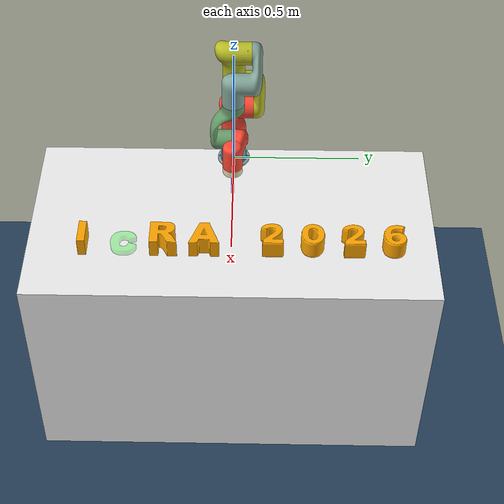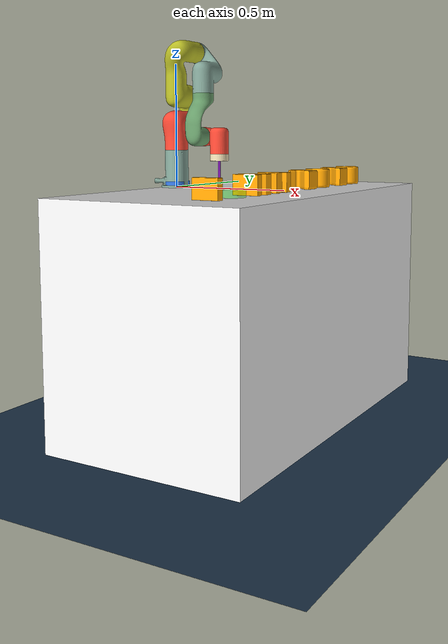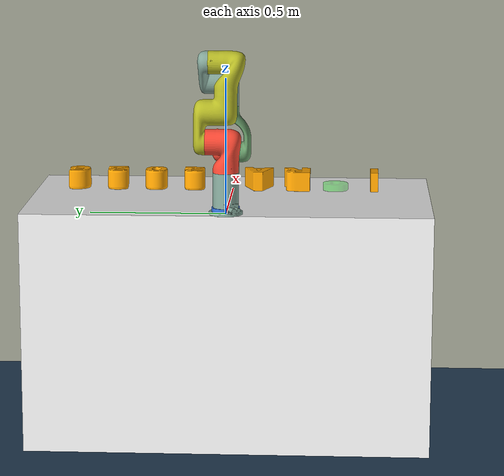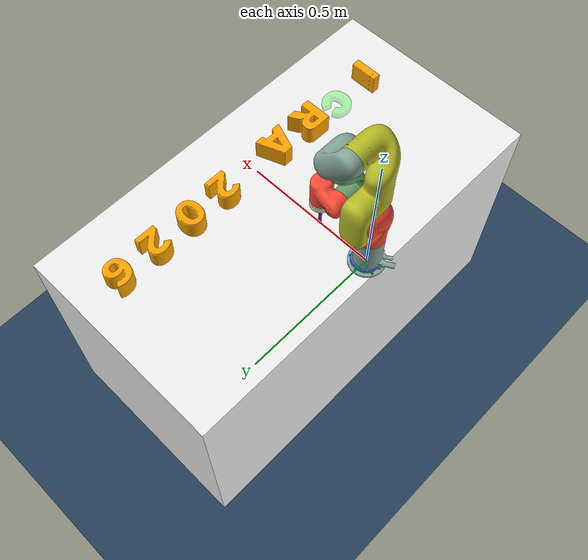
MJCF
<mujoco model="xarm6_pusht_icra_sign">
  <include file="common.xml"/>

  <asset>
    <mesh name="glyph_i" file="assets/glyph_i.obj" maxhullvert="32" scale="1 1 3"/>
    <mesh name="glyph_a" file="assets/glyph_a.obj" maxhullvert="32" scale="1 1 3"/>
    <!-- The pushed C. Visual only -- see the `block` body below. -->
    <mesh name="glyph_c" file="assets/glyph_c.obj"/>
    <mesh name="glyph_r" file="assets/glyph_r.obj" maxhullvert="32" scale="1 1 3"/>
    <mesh name="glyph_0" file="assets/glyph_0.obj" maxhullvert="32" scale="1 1 3"/>
    <mesh name="glyph_2" file="assets/glyph_2.obj" maxhullvert="32" scale="1 1 3"/>
    <mesh name="glyph_6" file="assets/glyph_6.obj" maxhullvert="32" scale="1 1 3"/>
  </asset>

  <worldbody>
    <geom name="table" type="box" size="0.40 0.7615 0.455" pos="0.35 0 -0.455"
      contype="3" conaffinity="3" rgba="0.95 0.95 0.95 1"/>

    <camera name="front" pos="2.3033 0.0400 1.0375"
      xyaxes="0.0000 1.0000 -0.0000 -0.4226 0.0000 0.9063"/>

    <body name="goal" mocap="true" pos="0.5 -0.40 0.0125" quat="0.70711 0 0 0.70711">
      <geom class="goal" name="goal_c" type="mesh" mesh="glyph_c"/>
    </body>

    <body name="local_goal" mocap="true" pos="0.0 0.0 0.0125" quat="1 0 0 0">
      <geom class="local_goal" name="local_goal_c" type="mesh"
            mesh="glyph_c"/>
    </body>

    <body name="block" pos="0.0 0.0 0.0125">
      <joint name="T_x" type="slide" axis="1 0 0" damping="0.0"/>
      <joint name="T_y" type="slide" axis="0 1 0" damping="0.0"/>
      <joint name="T_z" type="hinge" axis="0 0 1" damping="0.0"/>
      <joint name="T_zs" type="slide" axis="0 0 1" damping="0.0"/>
      <geom name="c_visual" type="mesh" mesh="glyph_c" contype="0"
            conaffinity="0" mass="0" rgba="0.2 0.45 0.85 1"/>
      <geom name="c_spine" type="box" size="0.0160 0.0515 0.0125" pos="-0.0323 0.0 0.0" mass="0.0348" rgba="0.2 0.45 0.85 0"/>
      <geom name="c_top_bar" type="box" size="0.0483 0.0160 0.0125" pos="0.0 0.0355 0.0" mass="0.0326" rgba="0.2 0.45 0.85 0"/>
      <geom name="c_bot_bar" type="box" size="0.0483 0.0160 0.0125" pos="0.0 -0.0355 0.0" mass="0.0326" rgba="0.2 0.45 0.85 0"/>
    </body>

    <geom class="tabletop_obstacle" name="letter_I" type="mesh"
      mesh="glyph_i" pos="0.5 -0.55 0.0375" euler="0 0 90"/>
    <geom class="tabletop_obstacle" name="letter_R" type="mesh"
      mesh="glyph_r" pos="0.5 -0.25 0.0375" euler="0 0 90"/>

    <!-- The A is now the source's own mesh like every other glyph; it
         used to be three boxes because `alphabets/` shipped no A. -->
    <geom class="tabletop_obstacle" name="letter_A" type="mesh"
      mesh="glyph_a" pos="0.5 -0.1 0.0375" euler="0 0 90"/>

    <geom class="tabletop_obstacle" name="digit_2" type="mesh"
      mesh="glyph_2" pos="0.5 0.15 0.0375" euler="0 0 90"/>
    <geom class="tabletop_obstacle" name="digit_0" type="mesh"
      mesh="glyph_0" pos="0.5 0.3 0.0375" euler="0 0 90"/>
    <geom class="tabletop_obstacle" name="digit_2b" type="mesh"
      mesh="glyph_2" pos="0.5 0.45 0.0375" euler="0 0 90"/>
    <geom class="tabletop_obstacle" name="digit_6" type="mesh"
      mesh="glyph_6" pos="0.5 0.6 0.0375" euler="0 0 90"/>
  </worldbody>

  <contact>
    <pair geom1="c_spine" geom2="table" condim="3" friction="0.3 0.3 0.005 0.0001 0.0001" solimp="0.999 0.9999 0.0001"/>
    <pair geom1="c_top_bar" geom2="table" condim="3" friction="0.3 0.3 0.005 0.0001 0.0001" solimp="0.999 0.9999 0.0001"/>
    <pair geom1="c_bot_bar" geom2="table" condim="3" friction="0.3 0.3 0.005 0.0001 0.0001" solimp="0.999 0.9999 0.0001"/>
  </contact>

  <sensor>
    <framepos name="position" objtype="body" objname="block" reftype="body" refname="goal"/>
    <framequat name="orientation" objtype="body" objname="block" reftype="body" refname="goal"/>
  </sensor>

  <keyframe>
    <key name="start"
      qpos="0.0 -0.785 -0.785 0.0 1.5708 0.3 0.400 0.0 0.0"/>
  </keyframe>

  <statistic center="0.40 0.04 0" extent="1.0"/>
</mujoco>

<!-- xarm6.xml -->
<mujoco model="xarm6_stick">

  <compiler angle="degree"/>

  <default>
    <default class="xarm6">
      <geom type="mesh" contype="1" conaffinity="1"
            solimp="0.99 0.99 0.01" solref="0.01 1"/>
      <joint damping="50" armature="1" frictionloss="0" limited="true"/>
      <velocity ctrllimited="true" forcelimited="true"/>
    </default>
  </default>

  <contact>
    <exclude body1="xarm6_link_base" body2="xarm6_link1"/>
    <exclude body1="xarm6_link1" body2="xarm6_link2"/>
    <exclude body1="xarm6_link2" body2="xarm6_link3"/>
    <exclude body1="xarm6_link3" body2="xarm6_link4"/>
    <exclude body1="xarm6_link4" body2="xarm6_link5"/>
    <exclude body1="xarm6_link5" body2="xarm6_link6"/>
    <exclude body1="xarm6_link6" body2="xarm6_stick"/>
  </contact>

  <asset>
    <material name="xarm6_gray" rgba="0.156863 0.156863 0.156863 1"/>
    <material name="xarm6_blue" rgba="0.513725 0.647059 0.596078 1"/>
    <material name="xarm6_red" rgba="0.984314 0.286275 0.203922 1"/>
    <material name="xarm6_yellow" rgba="0.721569 0.733333 0.14902 1"/>
    <material name="xarm6_green" rgba="0.407843 0.615686 0.415686 1"/>
    <material name="xarm6_white" rgba="0.921569 0.858824 0.698039 1"/>
    <material name="xarm6_stick" rgba="0.5 0.1 0.7 1"/>

    <mesh name="link_base_shell" file="assets/link1.obj" maxhullvert="32"/>
    <mesh name="link1" file="assets/link2.obj" maxhullvert="32"/>
    <mesh name="link2" file="assets/link3.obj" maxhullvert="32"/>
    <mesh name="link3" file="assets/link4.obj" maxhullvert="32"/>
    <mesh name="link4" file="assets/link5.obj" maxhullvert="32"/>
    <mesh name="link5" file="assets/link6.obj" maxhullvert="32"/>
    <mesh name="link6" file="assets/tool_flange.obj" maxhullvert="32"/>
  </asset>

  <worldbody>
    <body name="xarm6_link_base" childclass="xarm6">
      <geom name="xarm6_base_shell" mesh="link_base_shell" euler="0 0 180"
            material="xarm6_blue" mass="2.7"/>

      <body name="xarm6_link1" pos="0 0 0.1538" gravcomp="1">
        <joint name="xarm6_joint1" axis="0 0 1" range="-360 360"/>
        <geom name="xarm6_link1" mesh="link1" euler="0 0 180"
              material="xarm6_red" mass="2.16"/>

        <body name="xarm6_link2" pos="0.000350 0.075295 0.112000" euler="-90 0 -90" gravcomp="1">
          <joint name="xarm6_joint2" axis="0 0 1" range="-114.5916 114.5916"/>
          <geom name="xarm6_link2" mesh="link2" euler="0 0 180"
                material="xarm6_yellow" mass="1.71"/>

          <body name="xarm6_link3" pos="0.284550 0.053312 -0.008303" euler="0 0 90" gravcomp="1">
            <joint name="xarm6_joint3" axis="0 0 1" range="-223.4592 10.8859"/>
            <geom name="xarm6_link3" mesh="link3" euler="0 0 0"
                  material="xarm6_blue" mass="1.384"/>

            <body name="xarm6_link4" pos="0.077700 0.169121 -0.067495" euler="-90 0 0" gravcomp="1">
              <joint name="xarm6_joint4" axis="0 0 1" range="-360 360"
                     stiffness="175" springref="0"/>
              <geom name="xarm6_link4" mesh="link4" euler="0 0 90"
                    material="xarm6_green" mass="1.115"/>

              <body name="xarm6_link5" pos="-0.000006 0.004747 0.172996" euler="90 0 0" gravcomp="1">
                <joint name="xarm6_joint5" axis="0 0 1" range="-94.5352 180"/>
                <geom name="xarm6_link5" mesh="link5" euler="0 0 180"
                      material="xarm6_red" mass="1.275"/>

                <body name="xarm6_link6" pos="0.076010 0.068771 0.004339" euler="-90 0 0" gravcomp="1">
                  <joint name="xarm6_joint6" axis="0 0 1" range="-360 360"/>
                  <geom name="xarm6_link6" mesh="link6" euler="0 0 90"
                        material="xarm6_white" mass="0.1096"/>

                  <body name="xarm6_stick" pos="0 0 0">
                    <geom name="xarm6_stick" type="capsule" size="0.00555 0.08415"
                          pos="0 0 0.0897" material="xarm6_stick" mass="0.05"/>
                    <site name="xarm6_tip" pos="0 0 0.1794" size="0.003" rgba="1 0 0 1"/>
                  </body>
                </body>
              </body>
            </body>
          </body>
        </body>
      </body>
    </body>
  </worldbody>

  <actuator>
    <velocity class="xarm6" name="xarm6_motor1" joint="xarm6_joint1"
              ctrlrange="-0.5 0.5" forcerange="-50 50" kv="300"/>
    <velocity class="xarm6" name="xarm6_motor2" joint="xarm6_joint2"
              ctrlrange="-0.5 0.5" forcerange="-50 50" kv="300"/>
    <velocity class="xarm6" name="xarm6_motor3" joint="xarm6_joint3"
              ctrlrange="-0.5 0.5" forcerange="-32 32" kv="200"/>
    <velocity class="xarm6" name="xarm6_motor4" joint="xarm6_joint4"
              ctrlrange="-0.5 0.5" forcerange="-32 32" kv="200"/>
    <velocity class="xarm6" name="xarm6_motor5" joint="xarm6_joint5"
              ctrlrange="-0.5 0.5" forcerange="-32 32" kv="200"/>
    <velocity class="xarm6" name="xarm6_motor6" joint="xarm6_joint6"
              ctrlrange="-0.5 0.5" forcerange="-20 20" kv="200"/>
  </actuator>
</mujoco>

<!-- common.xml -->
<mujoco model="xarm6_pusht_tabletop_common">

  <option timestep="0.01" gravity="0 0 -9.81" iterations="20" ls_iterations="20" integrator="implicitfast"/>

  <include file="../xarm6/xarm6.xml"/>

  <default>
    <geom friction="0.5 0.005 0.0001" solref="0.004 1" solimp="0.9 0.95 0.001"/>
    <default class="goal">
      <geom conaffinity="0" contype="0" rgba="0 1 0 0.3"/>
    </default>
    <default class="local_goal">
      <geom conaffinity="0" contype="0" rgba="0 0.30 0.95 0.25"/>
    </default>
    <default class="obstacle">
      <geom conaffinity="1" contype="1" rgba="0.5 0.5 0.5 1"/>
    </default>
    <default class="tabletop_obstacle">
      <geom conaffinity="1" contype="1" rgba="1.0 0.647 0.0 1"/>
    </default>
  </default>

  <visual>
    <headlight diffuse="0.6 0.6 0.6" ambient="0.3 0.3 0.3" specular="0 0 0"/>
    <rgba haze="0.15 0.25 0.35 1"/>
  </visual>

  <asset>
    <texture type="skybox" builtin="gradient" rgb1="0.3 0.5 0.7" rgb2="0 0 0" width="512" height="3072"/>
    <texture type="2d" name="groundplane" builtin="checker" mark="edge" rgb1="0.2 0.3 0.4" rgb2="0.1 0.2 0.3"
      markrgb="0.8 0.8 0.8" width="300" height="300"/>
    <material name="groundplane" texture="groundplane" texuniform="true" texrepeat="5 5" reflectance="0.2"/>
  </asset>

  <worldbody>
    <light pos="0.3 0.0 1"/>
    <geom name="floor" size="0 0 .125" type="plane" pos="0 0 -0.91"
      contype="2" conaffinity="2" material="groundplane"/>
  </worldbody>

</mujoco>
